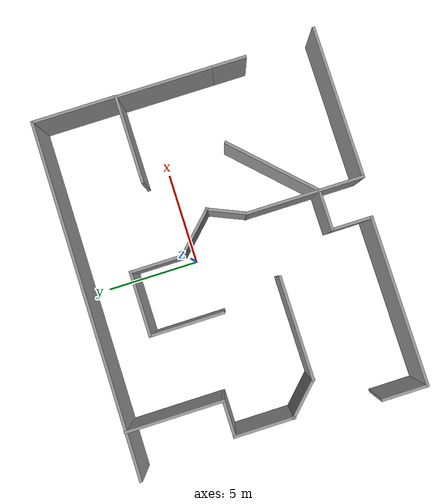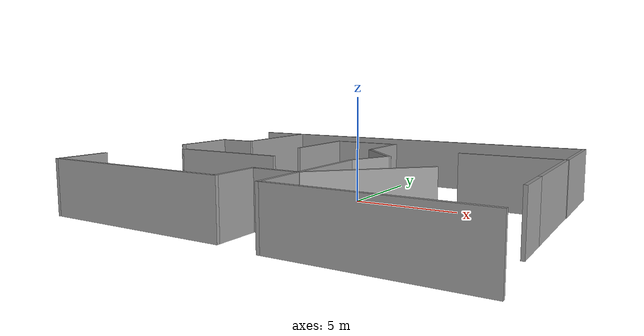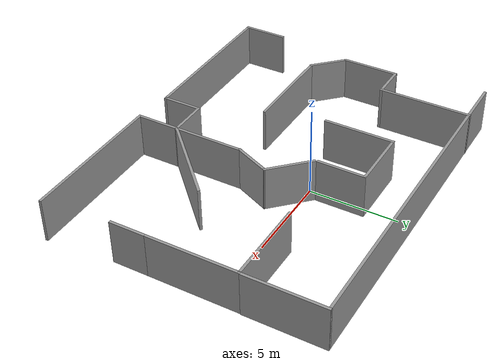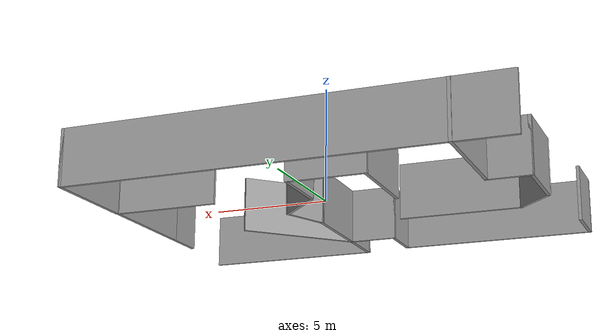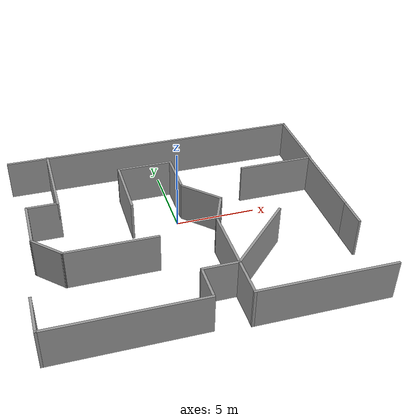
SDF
<?xml version='1.0'?>
<sdf version='1.6'>
  <model name='MAZE'>
    <pose frame=''>0.003237 -1.83944 0 0 -0 0</pose>
    <link name='Wall_1'>
      <collision name='Wall_1_Collision'>
        <geometry>
          <box>
            <size>19 0.15 2.5</size>
          </box>
        </geometry>
        <pose frame=''>0 0 1.25 0 -0 0</pose>
      </collision>
      <visual name='Wall_1_Visual'>
        <pose frame=''>0 0 1.25 0 -0 0</pose>
        <geometry>
          <box>
            <size>19 0.15 2.5</size>
          </box>
        </geometry>
        <material>
          <script>
            <uri>file://media/materials/scripts/gazebo.material</uri>
            <name>Gazebo/Grey</name>
          </script>
          <ambient>1 1 1 1</ambient>
        </material>
        <meta>
          <layer>0</layer>
        </meta>
      </visual>
      <pose frame=''>-0.162162 7.62261 0 0 -0 0</pose>
    </link>
    <link name='Wall_10'>
      <collision name='Wall_10_Collision'>
        <geometry>
          <box>
            <size>2 0.15 2.5</size>
          </box>
        </geometry>
        <pose frame=''>0 0 1.25 0 -0 0</pose>
      </collision>
      <visual name='Wall_10_Visual'>
        <pose frame=''>0 0 1.25 0 -0 0</pose>
        <geometry>
          <box>
            <size>2 0.15 2.5</size>
          </box>
        </geometry>
        <material>
          <script>
            <uri>file://media/materials/scripts/gazebo.material</uri>
            <name>Gazebo/Grey</name>
          </script>
          <ambient>1 1 1 1</ambient>
        </material>
        <meta>
          <layer>0</layer>
        </meta>
      </visual>
      <pose frame=''>-8.02276 2.54246 0 0 -0 3.14159</pose>
    </link>
    <link name='Wall_11'>
      <collision name='Wall_11_Collision'>
        <geometry>
          <box>
            <size>3.25 0.15 2.5</size>
          </box>
        </geometry>
        <pose frame=''>0 0 1.25 0 -0 0</pose>
      </collision>
      <visual name='Wall_11_Visual'>
        <pose frame=''>0 0 1.25 0 -0 0</pose>
        <geometry>
          <box>
            <size>3.25 0.15 2.5</size>
          </box>
        </geometry>
        <material>
          <script>
            <uri>file://media/materials/scripts/gazebo.material</uri>
            <name>Gazebo/Grey</name>
          </script>
          <ambient>1 1 1 1</ambient>
        </material>
        <meta>
          <layer>0</layer>
        </meta>
      </visual>
      <pose frame=''>-8.94776 0.992462 0 0 -0 -1.5708</pose>
    </link>
    <link name='Wall_12'>
      <collision name='Wall_12_Collision'>
        <geometry>
          <box>
            <size>2.25 0.15 2.5</size>
          </box>
        </geometry>
        <pose frame=''>0 0 1.25 0 -0 0</pose>
      </collision>
      <visual name='Wall_12_Visual'>
        <pose frame=''>0 0 1.25 0 -0 0</pose>
        <geometry>
          <box>
            <size>2.25 0.15 2.5</size>
          </box>
        </geometry>
        <material>
          <script>
            <uri>file://media/materials/scripts/gazebo.material</uri>
            <name>Gazebo/Grey</name>
          </script>
          <ambient>1 1 1 1</ambient>
        </material>
        <meta>
          <layer>0</layer>
        </meta>
      </visual>
      <pose frame=''>-8.2053 -1.3 0 0 -0 -0.785398</pose>
    </link>
    <link name='Wall_13'>
      <collision name='Wall_13_Collision'>
        <geometry>
          <box>
            <size>5.5 0.15 2.5</size>
          </box>
        </geometry>
        <pose frame=''>0 0 1.25 0 -0 0</pose>
      </collision>
      <visual name='Wall_13_Visual'>
        <pose frame=''>0 0 1.25 0 -0 0</pose>
        <geometry>
          <box>
            <size>5.5 0.15 2.5</size>
          </box>
        </geometry>
        <material>
          <script>
            <uri>file://media/materials/scripts/gazebo.material</uri>
            <name>Gazebo/Grey</name>
          </script>
          <ambient>1 1 1 1</ambient>
        </material>
        <meta>
          <layer>0</layer>
        </meta>
      </visual>
      <pose frame=''>-4.78784 -2.04246 0 0 -0 0</pose>
    </link>
    <link name='Wall_21'>
      <collision name='Wall_21_Collision'>
        <geometry>
          <box>
            <size>8.25 0.15 2.5</size>
          </box>
        </geometry>
        <pose frame=''>0 0 1.25 0 -0 0</pose>
      </collision>
      <visual name='Wall_21_Visual'>
        <pose frame=''>0 0 1.25 0 -0 0</pose>
        <geometry>
          <box>
            <size>8.25 0.15 2.5</size>
          </box>
        </geometry>
        <material>
          <script>
            <uri>file://media/materials/scripts/gazebo.material</uri>
            <name>Gazebo/Grey</name>
          </script>
          <ambient>1 1 1 1</ambient>
        </material>
        <meta>
          <layer>0</layer>
        </meta>
      </visual>
      <pose frame=''>5.53716 -7.64246 0 0 -0 3.14159</pose>
    </link>
    <link name='Wall_22'>
      <collision name='Wall_22_Collision'>
        <geometry>
          <box>
            <size>2.5 0.15 2.5</size>
          </box>
        </geometry>
        <pose frame=''>0 0 1.25 0 -0 0</pose>
      </collision>
      <visual name='Wall_22_Visual'>
        <pose frame=''>0 0 1.25 0 -0 0</pose>
        <geometry>
          <box>
            <size>2.5 0.15 2.5</size>
          </box>
        </geometry>
        <material>
          <script>
            <uri>file://media/materials/scripts/gazebo.material</uri>
            <name>Gazebo/Grey</name>
          </script>
          <ambient>1 1 1 1</ambient>
        </material>
        <meta>
          <layer>0</layer>
        </meta>
      </visual>
      <pose frame=''>1.48716 -6.46746 0 0 -0 1.5708</pose>
    </link>
    <link name='Wall_23'>
      <collision name='Wall_23_Collision'>
        <geometry>
          <box>
            <size>2.25 0.15 2.5</size>
          </box>
        </geometry>
        <pose frame=''>0 0 1.25 0 -0 0</pose>
      </collision>
      <visual name='Wall_23_Visual'>
        <pose frame=''>0 0 1.25 0 -0 0</pose>
        <geometry>
          <box>
            <size>2.25 0.15 2.5</size>
          </box>
        </geometry>
        <material>
          <script>
            <uri>file://media/materials/scripts/gazebo.material</uri>
            <name>Gazebo/Grey</name>
          </script>
          <ambient>1 1 1 1</ambient>
        </material>
        <meta>
          <layer>0</layer>
        </meta>
      </visual>
      <pose frame=''>0.437162 -5.29246 0 0 -0 3.14159</pose>
    </link>
    <link name='Wall_24'>
      <collision name='Wall_24_Collision'>
        <geometry>
          <box>
            <size>2.25 0.15 2.5</size>
          </box>
        </geometry>
        <pose frame=''>0 0 1.25 0 -0 0</pose>
      </collision>
      <visual name='Wall_24_Visual'>
        <pose frame=''>0 0 1.25 0 -0 0</pose>
        <geometry>
          <box>
            <size>2.25 0.15 2.5</size>
          </box>
        </geometry>
        <material>
          <script>
            <uri>file://media/materials/scripts/gazebo.material</uri>
            <name>Gazebo/Grey</name>
          </script>
          <ambient>1 1 1 1</ambient>
        </material>
        <meta>
          <layer>0</layer>
        </meta>
      </visual>
      <pose frame=''>-0.612838 -6.34246 0 0 -0 -1.5708</pose>
    </link>
    <link name='Wall_25'>
      <collision name='Wall_25_Collision'>
        <geometry>
          <box>
            <size>9 0.15 2.5</size>
          </box>
        </geometry>
        <pose frame=''>0 0 1.25 0 -0 0</pose>
      </collision>
      <visual name='Wall_25_Visual'>
        <pose frame=''>0 0 1.25 0 -0 0</pose>
        <geometry>
          <box>
            <size>9 0.15 2.5</size>
          </box>
        </geometry>
        <material>
          <script>
            <uri>file://media/materials/scripts/gazebo.material</uri>
            <name>Gazebo/Grey</name>
          </script>
          <ambient>1 1 1 1</ambient>
        </material>
        <meta>
          <layer>0</layer>
        </meta>
      </visual>
      <pose frame=''>-5.03784 -7.39246 0 0 -0 3.14159</pose>
    </link>
    <link name='Wall_26'>
      <collision name='Wall_26_Collision'>
        <geometry>
          <box>
            <size>2.5 0.15 2.5</size>
          </box>
        </geometry>
        <pose frame=''>0 0 1.25 0 -0 0</pose>
      </collision>
      <visual name='Wall_26_Visual'>
        <pose frame=''>0 0 1.25 0 -0 0</pose>
        <geometry>
          <box>
            <size>2.5 0.15 2.5</size>
          </box>
        </geometry>
        <material>
          <script>
            <uri>file://media/materials/scripts/gazebo.material</uri>
            <name>Gazebo/Grey</name>
          </script>
          <ambient>1 1 1 1</ambient>
        </material>
        <meta>
          <layer>0</layer>
        </meta>
      </visual>
      <pose frame=''>-9.46284 -6.21746 0 0 -0 1.5708</pose>
    </link>
    <link name='Wall_29'>
      <collision name='Wall_29_Collision'>
        <geometry>
          <box>
            <size>2.75 0.15 2.5</size>
          </box>
        </geometry>
        <pose frame=''>0 0 1.25 0 -0 0</pose>
      </collision>
      <visual name='Wall_29_Visual'>
        <pose frame=''>0 0 1.25 0 -0 0</pose>
        <geometry>
          <box>
            <size>2.75 0.15 2.5</size>
          </box>
        </geometry>
        <material>
          <script>
            <uri>file://media/materials/scripts/gazebo.material</uri>
            <name>Gazebo/Grey</name>
          </script>
          <ambient>1 1 1 1</ambient>
        </material>
        <meta>
          <layer>0</layer>
        </meta>
      </visual>
      <pose frame=''>1.39023 1.37555 0 0 -0 -0.785398</pose>
    </link>
    <link name='Wall_31'>
      <collision name='Wall_31_Collision'>
        <geometry>
          <box>
            <size>4 0.15 2.5</size>
          </box>
        </geometry>
        <pose frame=''>0 0 1.25 0 -0 0</pose>
      </collision>
      <visual name='Wall_31_Visual'>
        <pose frame=''>0 0 1.25 0 -0 0</pose>
        <geometry>
          <box>
            <size>4 0.15 2.5</size>
          </box>
        </geometry>
        <material>
          <script>
            <uri>file://media/materials/scripts/gazebo.material</uri>
            <name>Gazebo/Grey</name>
          </script>
          <ambient>1 1 1 1</ambient>
        </material>
        <meta>
          <layer>0</layer>
        </meta>
      </visual>
      <pose frame=''>1.48716 -3.36746 0 0 -0 1.5708</pose>
    </link>
    <link name='Wall_33'>
      <collision name='Wall_33_Collision'>
        <geometry>
          <box>
            <size>3.5 0.15 2.5</size>
          </box>
        </geometry>
        <pose frame=''>0 0 1.25 0 -0 0</pose>
      </collision>
      <visual name='Wall_33_Visual'>
        <pose frame=''>0 0 1.25 0 -0 0</pose>
        <geometry>
          <box>
            <size>3.5 0.15 2.5</size>
          </box>
        </geometry>
        <material>
          <script>
            <uri>file://media/materials/scripts/gazebo.material</uri>
            <name>Gazebo/Grey</name>
          </script>
          <ambient>1 1 1 1</ambient>
        </material>
        <meta>
          <layer>0</layer>
        </meta>
      </visual>
      <pose frame=''>-1.25752 5.07667 0 0 -0 3.14159</pose>
    </link>
    <link name='Wall_34'>
      <collision name='Wall_34_Collision'>
        <geometry>
          <box>
            <size>4 0.15 2.5</size>
          </box>
        </geometry>
        <pose frame=''>0 0 1.25 0 -0 0</pose>
      </collision>
      <visual name='Wall_34_Visual'>
        <pose frame=''>0 0 1.25 0 -0 0</pose>
        <geometry>
          <box>
            <size>4 0.15 2.5</size>
          </box>
        </geometry>
        <material>
          <script>
            <uri>file://media/materials/scripts/gazebo.material</uri>
            <name>Gazebo/Grey</name>
          </script>
          <ambient>1 1 1 1</ambient>
        </material>
        <meta>
          <layer>0</layer>
        </meta>
      </visual>
      <pose frame=''>-2.93252 3.15166 0 0 -0 -1.5708</pose>
    </link>
    <link name='Wall_38'>
      <collision name='Wall_38_Collision'>
        <geometry>
          <box>
            <size>2.75 0.15 2.5</size>
          </box>
        </geometry>
        <pose frame=''>0 0 1.25 0 -0 0</pose>
      </collision>
      <visual name='Wall_38_Visual'>
        <pose frame=''>0 0 1.25 0 -0 0</pose>
        <geometry>
          <box>
            <size>2.75 0.15 2.5</size>
          </box>
        </geometry>
        <material>
          <script>
            <uri>file://media/materials/scripts/gazebo.material</uri>
            <name>Gazebo/Grey</name>
          </script>
          <ambient>1 1 1 1</ambient>
        </material>
        <meta>
          <layer>0</layer>
        </meta>
      </visual>
      <pose frame=''>0.417483 3.77666 0 0 -0 -1.5708</pose>
    </link>
    <link name='Wall_40'>
      <collision name='Wall_40_Collision'>
        <geometry>
          <box>
            <size>2.21918 0.15 2.5</size>
          </box>
        </geometry>
        <pose frame=''>0 0 1.25 0 -0 0</pose>
      </collision>
      <visual name='Wall_40_Visual'>
        <pose frame=''>0 0 1.25 0 -0 0</pose>
        <geometry>
          <box>
            <size>2.21918 0.15 2.5</size>
          </box>
        </geometry>
        <material>
          <script>
            <uri>file://media/materials/scripts/gazebo.material</uri>
            <name>Gazebo/Grey</name>
          </script>
          <ambient>1 1 1 1</ambient>
        </material>
        <meta>
          <layer>0</layer>
        </meta>
      </visual>
      <pose frame=''>1.89831 -0.493077 0 0 -0 1.16211</pose>
    </link>
    <link name='Wall_42'>
      <collision name='Wall_42_Collision'>
        <geometry>
          <box>
            <size>5.25 0.15 2.5</size>
          </box>
        </geometry>
        <pose frame=''>0 0 1.25 0 -0 0</pose>
      </collision>
      <visual name='Wall_42_Visual'>
        <pose frame=''>0 0 1.25 0 -0 0</pose>
        <geometry>
          <box>
            <size>5.25 0.15 2.5</size>
          </box>
        </geometry>
        <material>
          <script>
            <uri>file://media/materials/scripts/gazebo.material</uri>
            <name>Gazebo/Grey</name>
          </script>
          <ambient>1 1 1 1</ambient>
        </material>
        <meta>
          <layer>0</layer>
        </meta>
      </visual>
      <pose frame=''>9.23436 0.601893 0 0 -0 -1.5708</pose>
    </link>
    <link name='Wall_43'>
      <collision name='Wall_43_Collision'>
        <geometry>
          <box>
            <size>2 0.15 2.5</size>
          </box>
        </geometry>
        <pose frame=''>0 0 1.25 0 -0 0</pose>
      </collision>
      <visual name='Wall_43_Visual'>
        <pose frame=''>0 0 1.25 0 -0 0</pose>
        <geometry>
          <box>
            <size>2 0.15 2.5</size>
          </box>
        </geometry>
        <material>
          <script>
            <uri>file://media/materials/scripts/gazebo.material</uri>
            <name>Gazebo/Grey</name>
          </script>
          <ambient>1 1 1 1</ambient>
        </material>
        <meta>
          <layer>0</layer>
        </meta>
      </visual>
      <pose frame=''>9.23436 -2.87311 0 0 -0 -1.5708</pose>
    </link>
    <link name='Wall_45'>
      <collision name='Wall_45_Collision'>
        <geometry>
          <box>
            <size>5.5 0.15 2.5</size>
          </box>
        </geometry>
        <pose frame=''>0 0 1.25 0 -0 0</pose>
      </collision>
      <visual name='Wall_45_Visual'>
        <pose frame=''>0 0 1.25 0 -0 0</pose>
        <geometry>
          <box>
            <size>5.5 0.15 2.5</size>
          </box>
        </geometry>
        <material>
          <script>
            <uri>file://media/materials/scripts/gazebo.material</uri>
            <name>Gazebo/Grey</name>
          </script>
          <ambient>1 1 1 1</ambient>
        </material>
        <meta>
          <layer>0</layer>
        </meta>
      </visual>
      <pose frame=''>3.37867 -3.40095 0 0 -0 0.785398</pose>
    </link>
    <link name='Wall_5'>
      <collision name='Wall_5_Collision'>
        <geometry>
          <box>
            <size>4.5 0.15 2.5</size>
          </box>
        </geometry>
        <pose frame=''>0 0 1.25 0 -0 0</pose>
      </collision>
      <visual name='Wall_5_Visual'>
        <pose frame=''>0 0 1.25 0 -0 0</pose>
        <geometry>
          <box>
            <size>4.5 0.15 2.5</size>
          </box>
        </geometry>
        <material>
          <script>
            <uri>file://media/materials/scripts/gazebo.material</uri>
            <name>Gazebo/Grey</name>
          </script>
          <ambient>1 1 1 1</ambient>
        </material>
        <meta>
          <layer>0</layer>
        </meta>
      </visual>
      <pose frame=''>9.26284 5.44761 0 0 -0 -1.5708</pose>
    </link>
    <link name='Wall_7'>
      <collision name='Wall_7_Collision'>
        <geometry>
          <box>
            <size>4.75 0.15 2.5</size>
          </box>
        </geometry>
        <pose frame=''>0 0 1.25 0 -0 0</pose>
      </collision>
      <visual name='Wall_7_Visual'>
        <pose frame=''>0 0 1.25 0 -0 0</pose>
        <geometry>
          <box>
            <size>4.75 0.15 2.5</size>
          </box>
        </geometry>
        <material>
          <script>
            <uri>file://media/materials/scripts/gazebo.material</uri>
            <name>Gazebo/Grey</name>
          </script>
          <ambient>1 1 1 1</ambient>
        </material>
        <meta>
          <layer>0</layer>
        </meta>
      </visual>
      <pose frame=''>6.93436 3.15189 0 0 -0 0</pose>
    </link>
    <link name='Wall_9'>
      <collision name='Wall_9_Collision'>
        <geometry>
          <box>
            <size>5.25 0.15 2.5</size>
          </box>
        </geometry>
        <pose frame=''>0 0 1.25 0 -0 0</pose>
      </collision>
      <visual name='Wall_9_Visual'>
        <pose frame=''>0 0 1.25 0 -0 0</pose>
        <geometry>
          <box>
            <size>5.25 0.15 2.5</size>
          </box>
        </geometry>
        <material>
          <script>
            <uri>file://media/materials/scripts/gazebo.material</uri>
            <name>Gazebo/Grey</name>
          </script>
          <ambient>1 1 1 1</ambient>
        </material>
        <meta>
          <layer>0</layer>
        </meta>
      </visual>
      <pose frame=''>-7.09776 5.09246 0 0 -0 -1.5708</pose>
    </link>
    <static>1</static>
  </model>
</sdf>
